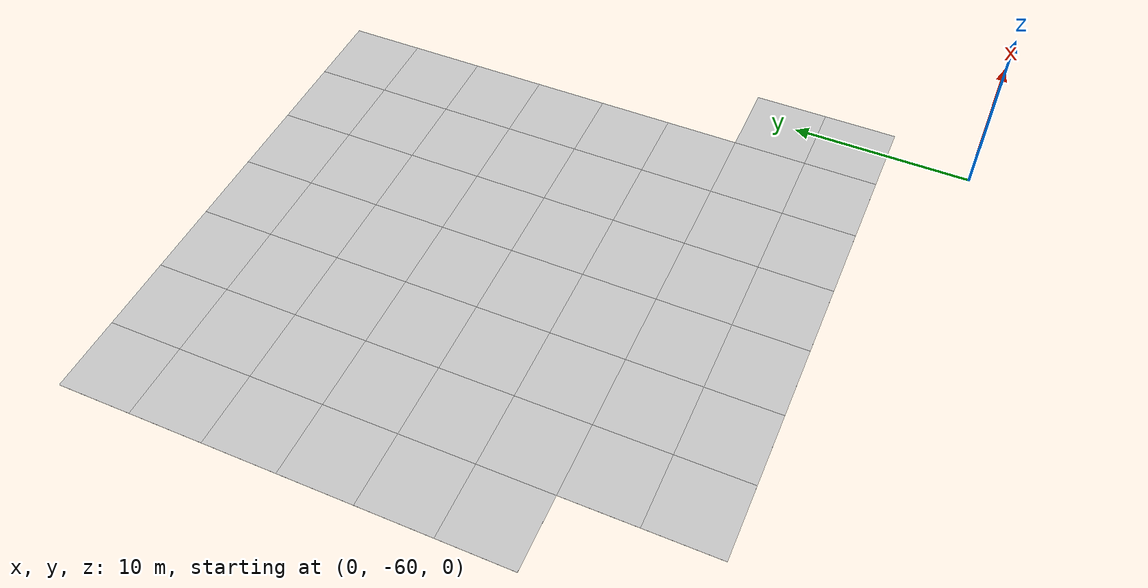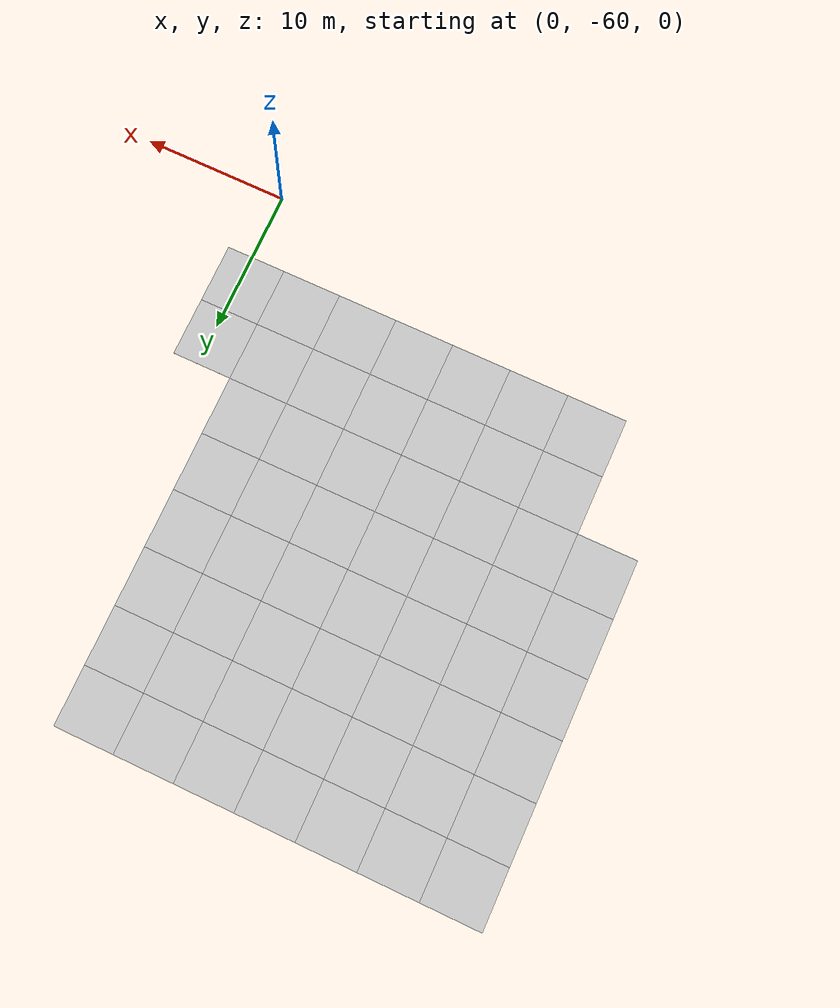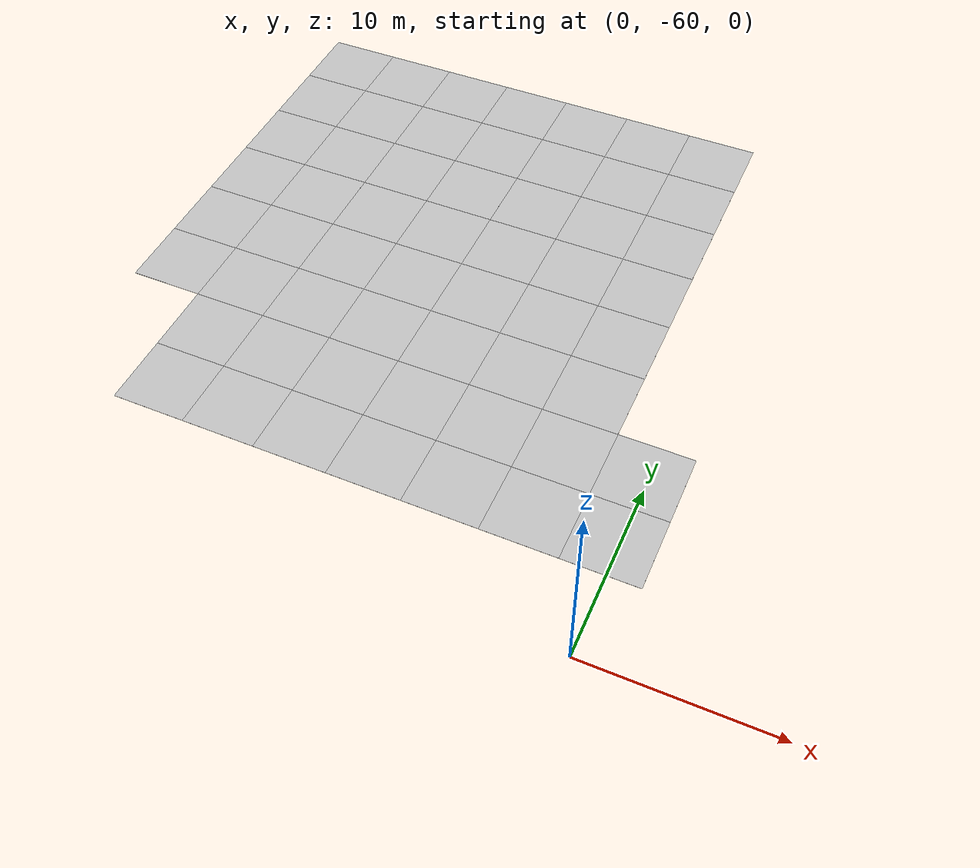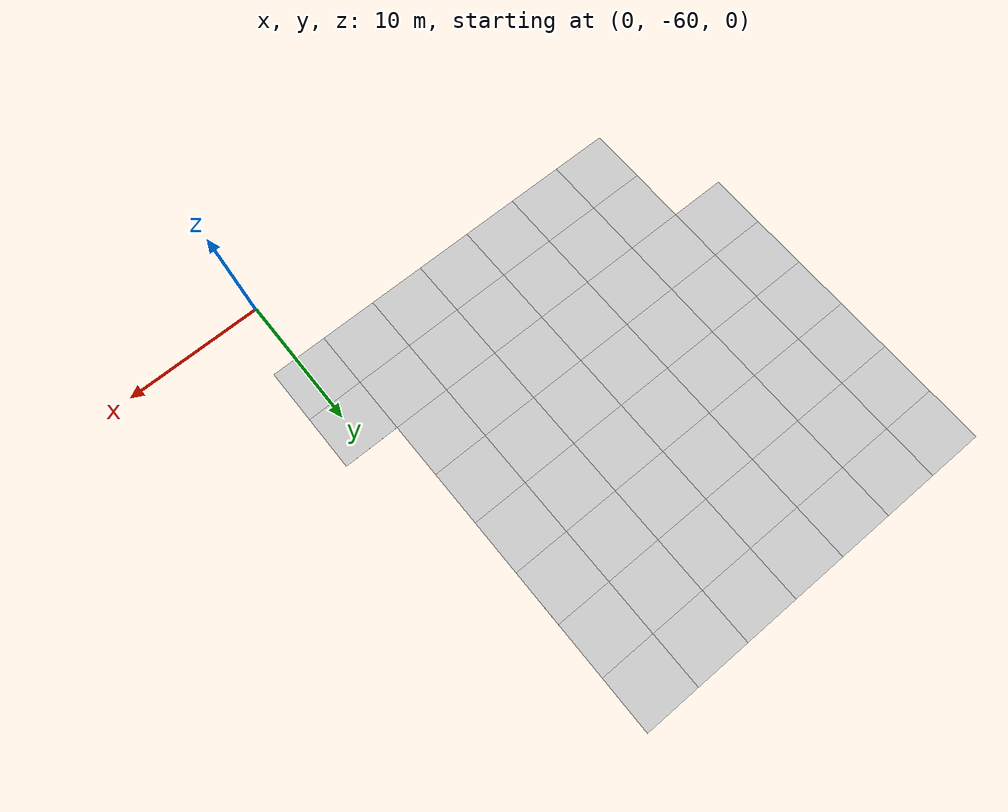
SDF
<sdf version="1.6">
 <world name="default">
  <model name="Tile/11-2">
   <static>1</static>
   <link name="link">
    <collision name="collision">
     <geometry><plane><normal>0 0 1</normal><size>4.096 4.096</size></plane></geometry>
     <surface><friction><ode><mu>100</mu><mu2>50</mu2></ode></friction></surface>
    </collision>
    <visual name="visual">
     <cast_shadows>0</cast_shadows>
     <geometry><plane><normal>0 0 1</normal><size>4.096 4.096</size></plane></geometry>
     <material>
      <script>
       <uri>file://materials/scripts</uri>
       <uri>file://materials/textures</uri>
       <name>Tile/e4f0c8edd0679bbf7d30cf2176a0b563ccfb72f2281cc6c7a8d43a3aa1fa3251</name>
      </script>
     </material>
    </visual>
   </link>
   <pose>-28.969873005767766 -45.104103275294236 0 0 -0 0</pose>
  </model>
  <model name="Tile/11-3">
   <static>1</static>
   <link name="link">
    <collision name="collision">
     <geometry><plane><normal>0 0 1</normal><size>4.096 4.096</size></plane></geometry>
     <surface><friction><ode><mu>100</mu><mu2>50</mu2></ode></friction></surface>
    </collision>
    <visual name="visual">
     <cast_shadows>0</cast_shadows>
     <geometry><plane><normal>0 0 1</normal><size>4.096 4.096</size></plane></geometry>
     <material>
      <script>
       <uri>file://materials/scripts</uri>
       <uri>file://materials/textures</uri>
       <name>Tile/c479ea7282fa4ebb76352e3bc3d0dce1fe5342bc051667836b433afbb9d802bd</name>
      </script>
     </material>
    </visual>
   </link>
   <pose>-28.969873005767766 -41.00810327529424 0 0 -0 0</pose>
  </model>
  <model name="Tile/11-4">
   <static>1</static>
   <link name="link">
    <collision name="collision">
     <geometry><plane><normal>0 0 1</normal><size>4.096 4.096</size></plane></geometry>
     <surface><friction><ode><mu>100</mu><mu2>50</mu2></ode></friction></surface>
    </collision>
    <visual name="visual">
     <cast_shadows>0</cast_shadows>
     <geometry><plane><normal>0 0 1</normal><size>4.096 4.096</size></plane></geometry>
     <material>
      <script>
       <uri>file://materials/scripts</uri>
       <uri>file://materials/textures</uri>
       <name>Tile/5eab350b8220ac9944dbdfa4ac3288c7c17e24c3bf5df0dfcf6173d64dae00a1</name>
      </script>
     </material>
    </visual>
   </link>
   <pose>-28.969873005767766 -36.91210327529424 0 0 -0 0</pose>
  </model>
  <model name="Tile/11-5">
   <static>1</static>
   <link name="link">
    <collision name="collision">
     <geometry><plane><normal>0 0 1</normal><size>4.096 4.096</size></plane></geometry>
     <surface><friction><ode><mu>100</mu><mu2>50</mu2></ode></friction></surface>
    </collision>
    <visual name="visual">
     <cast_shadows>0</cast_shadows>
     <geometry><plane><normal>0 0 1</normal><size>4.096 4.096</size></plane></geometry>
     <material>
      <script>
       <uri>file://materials/scripts</uri>
       <uri>file://materials/textures</uri>
       <name>Tile/5eab350b8220ac9944dbdfa4ac3288c7c17e24c3bf5df0dfcf6173d64dae00a1</name>
      </script>
     </material>
    </visual>
   </link>
   <pose>-28.969873005767766 -32.81610327529424 0 0 -0 0</pose>
  </model>
  <model name="Tile/11-6">
   <static>1</static>
   <link name="link">
    <collision name="collision">
     <geometry><plane><normal>0 0 1</normal><size>4.096 4.096</size></plane></geometry>
     <surface><friction><ode><mu>100</mu><mu2>50</mu2></ode></friction></surface>
    </collision>
    <visual name="visual">
     <cast_shadows>0</cast_shadows>
     <geometry><plane><normal>0 0 1</normal><size>4.096 4.096</size></plane></geometry>
     <material>
      <script>
       <uri>file://materials/scripts</uri>
       <uri>file://materials/textures</uri>
       <name>Tile/5eab350b8220ac9944dbdfa4ac3288c7c17e24c3bf5df0dfcf6173d64dae00a1</name>
      </script>
     </material>
    </visual>
   </link>
   <pose>-28.969873005767766 -28.72010327529424 0 0 -0 0</pose>
  </model>
  <model name="Tile/11-7">
   <static>1</static>
   <link name="link">
    <collision name="collision">
     <geometry><plane><normal>0 0 1</normal><size>4.096 4.096</size></plane></geometry>
     <surface><friction><ode><mu>100</mu><mu2>50</mu2></ode></friction></surface>
    </collision>
    <visual name="visual">
     <cast_shadows>0</cast_shadows>
     <geometry><plane><normal>0 0 1</normal><size>4.096 4.096</size></plane></geometry>
     <material>
      <script>
       <uri>file://materials/scripts</uri>
       <uri>file://materials/textures</uri>
       <name>Tile/5eab350b8220ac9944dbdfa4ac3288c7c17e24c3bf5df0dfcf6173d64dae00a1</name>
      </script>
     </material>
    </visual>
   </link>
   <pose>-28.969873005767766 -24.62410327529424 0 0 -0 0</pose>
  </model>
  <model name="Tile/12-0">
   <static>1</static>
   <link name="link">
    <collision name="collision">
     <geometry><plane><normal>0 0 1</normal><size>4.096 4.096</size></plane></geometry>
     <surface><friction><ode><mu>100</mu><mu2>50</mu2></ode></friction></surface>
    </collision>
    <visual name="visual">
     <cast_shadows>0</cast_shadows>
     <geometry><plane><normal>0 0 1</normal><size>4.096 4.096</size></plane></geometry>
     <material>
      <script>
       <uri>file://materials/scripts</uri>
       <uri>file://materials/textures</uri>
       <name>Tile/5eab350b8220ac9944dbdfa4ac3288c7c17e24c3bf5df0dfcf6173d64dae00a1</name>
      </script>
     </material>
    </visual>
   </link>
   <pose>-24.873873005767763 -53.296103275294236 0 0 -0 0</pose>
  </model>
  <model name="Tile/12-1">
   <static>1</static>
   <link name="link">
    <collision name="collision">
     <geometry><plane><normal>0 0 1</normal><size>4.096 4.096</size></plane></geometry>
     <surface><friction><ode><mu>100</mu><mu2>50</mu2></ode></friction></surface>
    </collision>
    <visual name="visual">
     <cast_shadows>0</cast_shadows>
     <geometry><plane><normal>0 0 1</normal><size>4.096 4.096</size></plane></geometry>
     <material>
      <script>
       <uri>file://materials/scripts</uri>
       <uri>file://materials/textures</uri>
       <name>Tile/5eab350b8220ac9944dbdfa4ac3288c7c17e24c3bf5df0dfcf6173d64dae00a1</name>
      </script>
     </material>
    </visual>
   </link>
   <pose>-24.873873005767763 -49.20010327529424 0 0 -0 0</pose>
  </model>
  <model name="Tile/12-2">
   <static>1</static>
   <link name="link">
    <collision name="collision">
     <geometry><plane><normal>0 0 1</normal><size>4.096 4.096</size></plane></geometry>
     <surface><friction><ode><mu>100</mu><mu2>50</mu2></ode></friction></surface>
    </collision>
    <visual name="visual">
     <cast_shadows>0</cast_shadows>
     <geometry><plane><normal>0 0 1</normal><size>4.096 4.096</size></plane></geometry>
     <material>
      <script>
       <uri>file://materials/scripts</uri>
       <uri>file://materials/textures</uri>
       <name>Tile/5eab350b8220ac9944dbdfa4ac3288c7c17e24c3bf5df0dfcf6173d64dae00a1</name>
      </script>
     </material>
    </visual>
   </link>
   <pose>-24.873873005767763 -45.104103275294236 0 0 -0 0</pose>
  </model>
  <model name="Tile/12-3">
   <static>1</static>
   <link name="link">
    <collision name="collision">
     <geometry><plane><normal>0 0 1</normal><size>4.096 4.096</size></plane></geometry>
     <surface><friction><ode><mu>100</mu><mu2>50</mu2></ode></friction></surface>
    </collision>
    <visual name="visual">
     <cast_shadows>0</cast_shadows>
     <geometry><plane><normal>0 0 1</normal><size>4.096 4.096</size></plane></geometry>
     <material>
      <script>
       <uri>file://materials/scripts</uri>
       <uri>file://materials/textures</uri>
       <name>Tile/64b83ad4eba6cb653b7557e74b4c96131fe190edd249d452c4bf5cab71d97735</name>
      </script>
     </material>
    </visual>
   </link>
   <pose>-24.873873005767763 -41.00810327529424 0 0 -0 0</pose>
  </model>
  <model name="Tile/12-4">
   <static>1</static>
   <link name="link">
    <collision name="collision">
     <geometry><plane><normal>0 0 1</normal><size>4.096 4.096</size></plane></geometry>
     <surface><friction><ode><mu>100</mu><mu2>50</mu2></ode></friction></surface>
    </collision>
    <visual name="visual">
     <cast_shadows>0</cast_shadows>
     <geometry><plane><normal>0 0 1</normal><size>4.096 4.096</size></plane></geometry>
     <material>
      <script>
       <uri>file://materials/scripts</uri>
       <uri>file://materials/textures</uri>
       <name>Tile/5eab350b8220ac9944dbdfa4ac3288c7c17e24c3bf5df0dfcf6173d64dae00a1</name>
      </script>
     </material>
    </visual>
   </link>
   <pose>-24.873873005767763 -36.91210327529424 0 0 -0 0</pose>
  </model>
  <model name="Tile/12-5">
   <static>1</static>
   <link name="link">
    <collision name="collision">
     <geometry><plane><normal>0 0 1</normal><size>4.096 4.096</size></plane></geometry>
     <surface><friction><ode><mu>100</mu><mu2>50</mu2></ode></friction></surface>
    </collision>
    <visual name="visual">
     <cast_shadows>0</cast_shadows>
     <geometry><plane><normal>0 0 1</normal><size>4.096 4.096</size></plane></geometry>
     <material>
      <script>
       <uri>file://materials/scripts</uri>
       <uri>file://materials/textures</uri>
       <name>Tile/5eab350b8220ac9944dbdfa4ac3288c7c17e24c3bf5df0dfcf6173d64dae00a1</name>
      </script>
     </material>
    </visual>
   </link>
   <pose>-24.873873005767763 -32.81610327529424 0 0 -0 0</pose>
  </model>
  <model name="Tile/12-6">
   <static>1</static>
   <link name="link">
    <collision name="collision">
     <geometry><plane><normal>0 0 1</normal><size>4.096 4.096</size></plane></geometry>
     <surface><friction><ode><mu>100</mu><mu2>50</mu2></ode></friction></surface>
    </collision>
    <visual name="visual">
     <cast_shadows>0</cast_shadows>
     <geometry><plane><normal>0 0 1</normal><size>4.096 4.096</size></plane></geometry>
     <material>
      <script>
       <uri>file://materials/scripts</uri>
       <uri>file://materials/textures</uri>
       <name>Tile/5eab350b8220ac9944dbdfa4ac3288c7c17e24c3bf5df0dfcf6173d64dae00a1</name>
      </script>
     </material>
    </visual>
   </link>
   <pose>-24.873873005767763 -28.72010327529424 0 0 -0 0</pose>
  </model>
  <model name="Tile/12-7">
   <static>1</static>
   <link name="link">
    <collision name="collision">
     <geometry><plane><normal>0 0 1</normal><size>4.096 4.096</size></plane></geometry>
     <surface><friction><ode><mu>100</mu><mu2>50</mu2></ode></friction></surface>
    </collision>
    <visual name="visual">
     <cast_shadows>0</cast_shadows>
     <geometry><plane><normal>0 0 1</normal><size>4.096 4.096</size></plane></geometry>
     <material>
      <script>
       <uri>file://materials/scripts</uri>
       <uri>file://materials/textures</uri>
       <name>Tile/5eab350b8220ac9944dbdfa4ac3288c7c17e24c3bf5df0dfcf6173d64dae00a1</name>
      </script>
     </material>
    </visual>
   </link>
   <pose>-24.873873005767763 -24.62410327529424 0 0 -0 0</pose>
  </model>
  <model name="Tile/13-0">
   <static>1</static>
   <link name="link">
    <collision name="collision">
     <geometry><plane><normal>0 0 1</normal><size>4.096 4.096</size></plane></geometry>
     <surface><friction><ode><mu>100</mu><mu2>50</mu2></ode></friction></surface>
    </collision>
    <visual name="visual">
     <cast_shadows>0</cast_shadows>
     <geometry><plane><normal>0 0 1</normal><size>4.096 4.096</size></plane></geometry>
     <material>
      <script>
       <uri>file://materials/scripts</uri>
       <uri>file://materials/textures</uri>
       <name>Tile/5eab350b8220ac9944dbdfa4ac3288c7c17e24c3bf5df0dfcf6173d64dae00a1</name>
      </script>
     </material>
    </visual>
   </link>
   <pose>-20.777873005767766 -53.296103275294236 0 0 -0 0</pose>
  </model>
  <model name="Tile/13-1">
   <static>1</static>
   <link name="link">
    <collision name="collision">
     <geometry><plane><normal>0 0 1</normal><size>4.096 4.096</size></plane></geometry>
     <surface><friction><ode><mu>100</mu><mu2>50</mu2></ode></friction></surface>
    </collision>
    <visual name="visual">
     <cast_shadows>0</cast_shadows>
     <geometry><plane><normal>0 0 1</normal><size>4.096 4.096</size></plane></geometry>
     <material>
      <script>
       <uri>file://materials/scripts</uri>
       <uri>file://materials/textures</uri>
       <name>Tile/5eab350b8220ac9944dbdfa4ac3288c7c17e24c3bf5df0dfcf6173d64dae00a1</name>
      </script>
     </material>
    </visual>
   </link>
   <pose>-20.777873005767766 -49.20010327529424 0 0 -0 0</pose>
  </model>
  <model name="Tile/13-2">
   <static>1</static>
   <link name="link">
    <collision name="collision">
     <geometry><plane><normal>0 0 1</normal><size>4.096 4.096</size></plane></geometry>
     <surface><friction><ode><mu>100</mu><mu2>50</mu2></ode></friction></surface>
    </collision>
    <visual name="visual">
     <cast_shadows>0</cast_shadows>
     <geometry><plane><normal>0 0 1</normal><size>4.096 4.096</size></plane></geometry>
     <material>
      <script>
       <uri>file://materials/scripts</uri>
       <uri>file://materials/textures</uri>
       <name>Tile/5eab350b8220ac9944dbdfa4ac3288c7c17e24c3bf5df0dfcf6173d64dae00a1</name>
      </script>
     </material>
    </visual>
   </link>
   <pose>-20.777873005767766 -45.104103275294236 0 0 -0 0</pose>
  </model>
  <model name="Tile/13-3">
   <static>1</static>
   <link name="link">
    <collision name="collision">
     <geometry><plane><normal>0 0 1</normal><size>4.096 4.096</size></plane></geometry>
     <surface><friction><ode><mu>100</mu><mu2>50</mu2></ode></friction></surface>
    </collision>
    <visual name="visual">
     <cast_shadows>0</cast_shadows>
     <geometry><plane><normal>0 0 1</normal><size>4.096 4.096</size></plane></geometry>
     <material>
      <script>
       <uri>file://materials/scripts</uri>
       <uri>file://materials/textures</uri>
       <name>Tile/a4f88de43d3d6e0bd1d957b4a12135152e91ee0ced67b1a0b945aad336f016a4</name>
      </script>
     </material>
    </visual>
   </link>
   <pose>-20.777873005767766 -41.00810327529424 0 0 -0 0</pose>
  </model>
  <model name="Tile/13-4">
   <static>1</static>
   <link name="link">
    <collision name="collision">
     <geometry><plane><normal>0 0 1</normal><size>4.096 4.096</size></plane></geometry>
     <surface><friction><ode><mu>100</mu><mu2>50</mu2></ode></friction></surface>
    </collision>
    <visual name="visual">
     <cast_shadows>0</cast_shadows>
     <geometry><plane><normal>0 0 1</normal><size>4.096 4.096</size></plane></geometry>
     <material>
      <script>
       <uri>file://materials/scripts</uri>
       <uri>file://materials/textures</uri>
       <name>Tile/9358590a183e644f9c6049dfbfd8828ea33b1f3a09569dcf36001e056eb0a59b</name>
      </script>
     </material>
    </visual>
   </link>
   <pose>-20.777873005767766 -36.91210327529424 0 0 -0 0</pose>
  </model>
  <model name="Tile/13-5">
   <static>1</static>
   <link name="link">
    <collision name="collision">
     <geometry><plane><normal>0 0 1</normal><size>4.096 4.096</size></plane></geometry>
     <surface><friction><ode><mu>100</mu><mu2>50</mu2></ode></friction></surface>
    </collision>
    <visual name="visual">
     <cast_shadows>0</cast_shadows>
     <geometry><plane><normal>0 0 1</normal><size>4.096 4.096</size></plane></geometry>
     <material>
      <script>
       <uri>file://materials/scripts</uri>
       <uri>file://materials/textures</uri>
       <name>Tile/5eab350b8220ac9944dbdfa4ac3288c7c17e24c3bf5df0dfcf6173d64dae00a1</name>
      </script>
     </material>
    </visual>
   </link>
   <pose>-20.777873005767766 -32.81610327529424 0 0 -0 0</pose>
  </model>
  <model name="Tile/13-6">
   <static>1</static>
   <link name="link">
    <collision name="collision">
     <geometry><plane><normal>0 0 1</normal><size>4.096 4.096</size></plane></geometry>
     <surface><friction><ode><mu>100</mu><mu2>50</mu2></ode></friction></surface>
    </collision>
    <visual name="visual">
     <cast_shadows>0</cast_shadows>
     <geometry><plane><normal>0 0 1</normal><size>4.096 4.096</size></plane></geometry>
     <material>
      <script>
       <uri>file://materials/scripts</uri>
       <uri>file://materials/textures</uri>
       <name>Tile/5eab350b8220ac9944dbdfa4ac3288c7c17e24c3bf5df0dfcf6173d64dae00a1</name>
      </script>
     </material>
    </visual>
   </link>
   <pose>-20.777873005767766 -28.72010327529424 0 0 -0 0</pose>
  </model>
  <model name="Tile/13-7">
   <static>1</static>
   <link name="link">
    <collision name="collision">
     <geometry><plane><normal>0 0 1</normal><size>4.096 4.096</size></plane></geometry>
     <surface><friction><ode><mu>100</mu><mu2>50</mu2></ode></friction></surface>
    </collision>
    <visual name="visual">
     <cast_shadows>0</cast_shadows>
     <geometry><plane><normal>0 0 1</normal><size>4.096 4.096</size></plane></geometry>
     <material>
      <script>
       <uri>file://materials/scripts</uri>
       <uri>file://materials/textures</uri>
       <name>Tile/5eab350b8220ac9944dbdfa4ac3288c7c17e24c3bf5df0dfcf6173d64dae00a1</name>
      </script>
     </material>
    </visual>
   </link>
   <pose>-20.777873005767766 -24.62410327529424 0 0 -0 0</pose>
  </model>
  <model name="Tile/14-0">
   <static>1</static>
   <link name="link">
    <collision name="collision">
     <geometry><plane><normal>0 0 1</normal><size>4.096 4.096</size></plane></geometry>
     <surface><friction><ode><mu>100</mu><mu2>50</mu2></ode></friction></surface>
    </collision>
    <visual name="visual">
     <cast_shadows>0</cast_shadows>
     <geometry><plane><normal>0 0 1</normal><size>4.096 4.096</size></plane></geometry>
     <material>
      <script>
       <uri>file://materials/scripts</uri>
       <uri>file://materials/textures</uri>
       <name>Tile/5eab350b8220ac9944dbdfa4ac3288c7c17e24c3bf5df0dfcf6173d64dae00a1</name>
      </script>
     </material>
    </visual>
   </link>
   <pose>-16.681873005767763 -53.296103275294236 0 0 -0 0</pose>
  </model>
  <model name="Tile/14-1">
   <static>1</static>
   <link name="link">
    <collision name="collision">
     <geometry><plane><normal>0 0 1</normal><size>4.096 4.096</size></plane></geometry>
     <surface><friction><ode><mu>100</mu><mu2>50</mu2></ode></friction></surface>
    </collision>
    <visual name="visual">
     <cast_shadows>0</cast_shadows>
     <geometry><plane><normal>0 0 1</normal><size>4.096 4.096</size></plane></geometry>
     <material>
      <script>
       <uri>file://materials/scripts</uri>
       <uri>file://materials/textures</uri>
       <name>Tile/5eab350b8220ac9944dbdfa4ac3288c7c17e24c3bf5df0dfcf6173d64dae00a1</name>
      </script>
     </material>
    </visual>
   </link>
   <pose>-16.681873005767763 -49.20010327529424 0 0 -0 0</pose>
  </model>
  <model name="Tile/14-2">
   <static>1</static>
   <link name="link">
    <collision name="collision">
     <geometry><plane><normal>0 0 1</normal><size>4.096 4.096</size></plane></geometry>
     <surface><friction><ode><mu>100</mu><mu2>50</mu2></ode></friction></surface>
    </collision>
    <visual name="visual">
     <cast_shadows>0</cast_shadows>
     <geometry><plane><normal>0 0 1</normal><size>4.096 4.096</size></plane></geometry>
     <material>
      <script>
       <uri>file://materials/scripts</uri>
       <uri>file://materials/textures</uri>
       <name>Tile/5eab350b8220ac9944dbdfa4ac3288c7c17e24c3bf5df0dfcf6173d64dae00a1</name>
      </script>
     </material>
    </visual>
   </link>
   <pose>-16.681873005767763 -45.104103275294236 0 0 -0 0</pose>
  </model>
  <model name="Tile/14-3">
   <static>1</static>
   <link name="link">
    <collision name="collision">
     <geometry><plane><normal>0 0 1</normal><size>4.096 4.096</size></plane></geometry>
     <surface><friction><ode><mu>100</mu><mu2>50</mu2></ode></friction></surface>
    </collision>
    <visual name="visual">
     <cast_shadows>0</cast_shadows>
     <geometry><plane><normal>0 0 1</normal><size>4.096 4.096</size></plane></geometry>
     <material>
      <script>
       <uri>file://materials/scripts</uri>
       <uri>file://materials/textures</uri>
       <name>Tile/c28259a6397635ff0918fdcdacf67cd623eb404393fb616636146822791ff4e6</name>
      </script>
     </material>
    </visual>
   </link>
   <pose>-16.681873005767763 -41.00810327529424 0 0 -0 0</pose>
  </model>
  <model name="Tile/14-4">
   <static>1</static>
   <link name="link">
    <collision name="collision">
     <geometry><plane><normal>0 0 1</normal><size>4.096 4.096</size></plane></geometry>
     <surface><friction><ode><mu>100</mu><mu2>50</mu2></ode></friction></surface>
    </collision>
    <visual name="visual">
     <cast_shadows>0</cast_shadows>
     <geometry><plane><normal>0 0 1</normal><size>4.096 4.096</size></plane></geometry>
     <material>
      <script>
       <uri>file://materials/scripts</uri>
       <uri>file://materials/textures</uri>
       <name>Tile/ae9521858ff1930b107badcede4153d62ba9a1880a785c18564fc0a0d1b5d340</name>
      </script>
     </material>
    </visual>
   </link>
   <pose>-16.681873005767763 -36.91210327529424 0 0 -0 0</pose>
  </model>
  <model name="Tile/14-5">
   <static>1</static>
   <link name="link">
    <collision name="collision">
     <geometry><plane><normal>0 0 1</normal><size>4.096 4.096</size></plane></geometry>
     <surface><friction><ode><mu>100</mu><mu2>50</mu2></ode></friction></surface>
    </collision>
    <visual name="visual">
     <cast_shadows>0</cast_shadows>
     <geometry><plane><normal>0 0 1</normal><size>4.096 4.096</size></plane></geometry>
     <material>
      <script>
       <uri>file://materials/scripts</uri>
       <uri>file://materials/textures</uri>
       <name>Tile/5eab350b8220ac9944dbdfa4ac3288c7c17e24c3bf5df0dfcf6173d64dae00a1</name>
      </script>
     </material>
    </visual>
   </link>
   <pose>-16.681873005767763 -32.81610327529424 0 0 -0 0</pose>
  </model>
  <model name="Tile/14-6">
   <static>1</static>
   <link name="link">
    <collision name="collision">
     <geometry><plane><normal>0 0 1</normal><size>4.096 4.096</size></plane></geometry>
     <surface><friction><ode><mu>100</mu><mu2>50</mu2></ode></friction></surface>
    </collision>
    <visual name="visual">
     <cast_shadows>0</cast_shadows>
     <geometry><plane><normal>0 0 1</normal><size>4.096 4.096</size></plane></geometry>
     <material>
      <script>
       <uri>file://materials/scripts</uri>
       <uri>file://materials/textures</uri>
       <name>Tile/5eab350b8220ac9944dbdfa4ac3288c7c17e24c3bf5df0dfcf6173d64dae00a1</name>
      </script>
     </material>
    </visual>
   </link>
   <pose>-16.681873005767763 -28.72010327529424 0 0 -0 0</pose>
  </model>
  <model name="Tile/14-7">
   <static>1</static>
   <link name="link">
    <collision name="collision">
     <geometry><plane><normal>0 0 1</normal><size>4.096 4.096</size></plane></geometry>
     <surface><friction><ode><mu>100</mu><mu2>50</mu2></ode></friction></surface>
    </collision>
    <visual name="visual">
     <cast_shadows>0</cast_shadows>
     <geometry><plane><normal>0 0 1</normal><size>4.096 4.096</size></plane></geometry>
     <material>
      <script>
       <uri>file://materials/scripts</uri>
       <uri>file://materials/textures</uri>
       <name>Tile/5eab350b8220ac9944dbdfa4ac3288c7c17e24c3bf5df0dfcf6173d64dae00a1</name>
      </script>
     </material>
    </visual>
   </link>
   <pose>-16.681873005767763 -24.62410327529424 0 0 -0 0</pose>
  </model>
  <model name="Tile/15-0">
   <static>1</static>
   <link name="link">
    <collision name="collision">
     <geometry><plane><normal>0 0 1</normal><size>4.096 4.096</size></plane></geometry>
     <surface><friction><ode><mu>100</mu><mu2>50</mu2></ode></friction></surface>
    </collision>
    <visual name="visual">
     <cast_shadows>0</cast_shadows>
     <geometry><plane><normal>0 0 1</normal><size>4.096 4.096</size></plane></geometry>
     <material>
      <script>
       <uri>file://materials/scripts</uri>
       <uri>file://materials/textures</uri>
       <name>Tile/5eab350b8220ac9944dbdfa4ac3288c7c17e24c3bf5df0dfcf6173d64dae00a1</name>
      </script>
     </material>
    </visual>
   </link>
   <pose>-12.585873005767766 -53.296103275294236 0 0 -0 0</pose>
  </model>
  <model name="Tile/15-1">
   <static>1</static>
   <link name="link">
    <collision name="collision">
     <geometry><plane><normal>0 0 1</normal><size>4.096 4.096</size></plane></geometry>
     <surface><friction><ode><mu>100</mu><mu2>50</mu2></ode></friction></surface>
    </collision>
    <visual name="visual">
     <cast_shadows>0</cast_shadows>
     <geometry><plane><normal>0 0 1</normal><size>4.096 4.096</size></plane></geometry>
     <material>
      <script>
       <uri>file://materials/scripts</uri>
       <uri>file://materials/textures</uri>
       <name>Tile/5eab350b8220ac9944dbdfa4ac3288c7c17e24c3bf5df0dfcf6173d64dae00a1</name>
      </script>
     </material>
    </visual>
   </link>
   <pose>-12.585873005767766 -49.20010327529424 0 0 -0 0</pose>
  </model>
  <model name="Tile/15-2">
   <static>1</static>
   <link name="link">
    <collision name="collision">
     <geometry><plane><normal>0 0 1</normal><size>4.096 4.096</size></plane></geometry>
     <surface><friction><ode><mu>100</mu><mu2>50</mu2></ode></friction></surface>
    </collision>
    <visual name="visual">
     <cast_shadows>0</cast_shadows>
     <geometry><plane><normal>0 0 1</normal><size>4.096 4.096</size></plane></geometry>
     <material>
      <script>
       <uri>file://materials/scripts</uri>
       <uri>file://materials/textures</uri>
       <name>Tile/5eab350b8220ac9944dbdfa4ac3288c7c17e24c3bf5df0dfcf6173d64dae00a1</name>
      </script>
     </material>
    </visual>
   </link>
   <pose>-12.585873005767766 -45.104103275294236 0 0 -0 0</pose>
  </model>
  <model name="Tile/15-3">
   <static>1</static>
   <link name="link">
    <collision name="collision">
     <geometry><plane><normal>0 0 1</normal><size>4.096 4.096</size></plane></geometry>
     <surface><friction><ode><mu>100</mu><mu2>50</mu2></ode></friction></surface>
    </collision>
    <visual name="visual">
     <cast_shadows>0</cast_shadows>
     <geometry><plane><normal>0 0 1</normal><size>4.096 4.096</size></plane></geometry>
     <material>
      <script>
       <uri>file://materials/scripts</uri>
       <uri>file://materials/textures</uri>
       <name>Tile/5eab350b8220ac9944dbdfa4ac3288c7c17e24c3bf5df0dfcf6173d64dae00a1</name>
      </script>
     </material>
    </visual>
   </link>
   <pose>-12.585873005767766 -41.00810327529424 0 0 -0 0</pose>
  </model>
  <model name="Tile/15-4">
   <static>1</static>
   <link name="link">
    <collision name="collision">
     <geometry><plane><normal>0 0 1</normal><size>4.096 4.096</size></plane></geometry>
     <surface><friction><ode><mu>100</mu><mu2>50</mu2></ode></friction></surface>
    </collision>
    <visual name="visual">
     <cast_shadows>0</cast_shadows>
     <geometry><plane><normal>0 0 1</normal><size>4.096 4.096</size></plane></geometry>
     <material>
      <script>
       <uri>file://materials/scripts</uri>
       <uri>file://materials/textures</uri>
       <name>Tile/9d0e914d7e436d001f797bb160eab153590de4413be98a07891fcea07e9897e2</name>
      </script>
     </material>
    </visual>
   </link>
   <pose>-12.585873005767766 -36.91210327529424 0 0 -0 0</pose>
  </model>
  <model name="Tile/15-5">
   <static>1</static>
   <link name="link">
    <collision name="collision">
     <geometry><plane><normal>0 0 1</normal><size>4.096 4.096</size></plane></geometry>
     <surface><friction><ode><mu>100</mu><mu2>50</mu2></ode></friction></surface>
    </collision>
    <visual name="visual">
     <cast_shadows>0</cast_shadows>
     <geometry><plane><normal>0 0 1</normal><size>4.096 4.096</size></plane></geometry>
     <material>
      <script>
       <uri>file://materials/scripts</uri>
       <uri>file://materials/textures</uri>
       <name>Tile/5eab350b8220ac9944dbdfa4ac3288c7c17e24c3bf5df0dfcf6173d64dae00a1</name>
      </script>
     </material>
    </visual>
   </link>
   <pose>-12.585873005767766 -32.81610327529424 0 0 -0 0</pose>
  </model>
  <model name="Tile/15-6">
   <static>1</static>
   <link name="link">
    <collision name="collision">
     <geometry><plane><normal>0 0 1</normal><size>4.096 4.096</size></plane></geometry>
     <surface><friction><ode><mu>100</mu><mu2>50</mu2></ode></friction></surface>
    </collision>
    <visual name="visual">
     <cast_shadows>0</cast_shadows>
     <geometry><plane><normal>0 0 1</normal><size>4.096 4.096</size></plane></geometry>
     <material>
      <script>
       <uri>file://materials/scripts</uri>
       <uri>file://materials/textures</uri>
       <name>Tile/5eab350b8220ac9944dbdfa4ac3288c7c17e24c3bf5df0dfcf6173d64dae00a1</name>
      </script>
     </material>
    </visual>
   </link>
   <pose>-12.585873005767766 -28.72010327529424 0 0 -0 0</pose>
  </model>
  <model name="Tile/15-7">
   <static>1</static>
   <link name="link">
    <collision name="collision">
     <geometry><plane><normal>0 0 1</normal><size>4.096 4.096</size></plane></geometry>
     <surface><friction><ode><mu>100</mu><mu2>50</mu2></ode></friction></surface>
    </collision>
    <visual name="visual">
     <cast_shadows>0</cast_shadows>
     <geometry><plane><normal>0 0 1</normal><size>4.096 4.096</size></plane></geometry>
     <material>
      <script>
       <uri>file://materials/scripts</uri>
       <uri>file://materials/textures</uri>
       <name>Tile/5eab350b8220ac9944dbdfa4ac3288c7c17e24c3bf5df0dfcf6173d64dae00a1</name>
      </script>
     </material>
    </visual>
   </link>
   <pose>-12.585873005767766 -24.62410327529424 0 0 -0 0</pose>
  </model>
  <model name="Tile/16-0">
   <static>1</static>
   <link name="link">
    <collision name="collision">
     <geometry><plane><normal>0 0 1</normal><size>4.096 4.096</size></plane></geometry>
     <surface><friction><ode><mu>100</mu><mu2>50</mu2></ode></friction></surface>
    </collision>
    <visual name="visual">
     <cast_shadows>0</cast_shadows>
     <geometry><plane><normal>0 0 1</normal><size>4.096 4.096</size></plane></geometry>
     <material>
      <script>
       <uri>file://materials/scripts</uri>
       <uri>file://materials/textures</uri>
       <name>Tile/5eab350b8220ac9944dbdfa4ac3288c7c17e24c3bf5df0dfcf6173d64dae00a1</name>
      </script>
     </material>
    </visual>
   </link>
   <pose>-8.489873005767762 -53.296103275294236 0 0 -0 0</pose>
  </model>
  <model name="Tile/16-1">
   <static>1</static>
   <link name="link">
    <collision name="collision">
     <geometry><plane><normal>0 0 1</normal><size>4.096 4.096</size></plane></geometry>
     <surface><friction><ode><mu>100</mu><mu2>50</mu2></ode></friction></surface>
    </collision>
    <visual name="visual">
     <cast_shadows>0</cast_shadows>
     <geometry><plane><normal>0 0 1</normal><size>4.096 4.096</size></plane></geometry>
     <material>
      <script>
       <uri>file://materials/scripts</uri>
       <uri>file://materials/textures</uri>
       <name>Tile/5eab350b8220ac9944dbdfa4ac3288c7c17e24c3bf5df0dfcf6173d64dae00a1</name>
      </script>
     </material>
    </visual>
   </link>
   <pose>-8.489873005767762 -49.20010327529424 0 0 -0 0</pose>
  </model>
  <model name="Tile/16-2">
   <static>1</static>
   <link name="link">
    <collision name="collision">
     <geometry><plane><normal>0 0 1</normal><size>4.096 4.096</size></plane></geometry>
     <surface><friction><ode><mu>100</mu><mu2>50</mu2></ode></friction></surface>
    </collision>
    <visual name="visual">
     <cast_shadows>0</cast_shadows>
     <geometry><plane><normal>0 0 1</normal><size>4.096 4.096</size></plane></geometry>
     <material>
      <script>
       <uri>file://materials/scripts</uri>
       <uri>file://materials/textures</uri>
       <name>Tile/5eab350b8220ac9944dbdfa4ac3288c7c17e24c3bf5df0dfcf6173d64dae00a1</name>
      </script>
     </material>
    </visual>
   </link>
   <pose>-8.489873005767762 -45.104103275294236 0 0 -0 0</pose>
  </model>
  <model name="Tile/16-3">
   <static>1</static>
   <link name="link">
    <collision name="collision">
     <geometry><plane><normal>0 0 1</normal><size>4.096 4.096</size></plane></geometry>
     <surface><friction><ode><mu>100</mu><mu2>50</mu2></ode></friction></surface>
    </collision>
    <visual name="visual">
     <cast_shadows>0</cast_shadows>
     <geometry><plane><normal>0 0 1</normal><size>4.096 4.096</size></plane></geometry>
     <material>
      <script>
       <uri>file://materials/scripts</uri>
       <uri>file://materials/textures</uri>
       <name>Tile/5eab350b8220ac9944dbdfa4ac3288c7c17e24c3bf5df0dfcf6173d64dae00a1</name>
      </script>
     </material>
    </visual>
   </link>
   <pose>-8.489873005767762 -41.00810327529424 0 0 -0 0</pose>
  </model>
  <model name="Tile/16-4">
   <static>1</static>
   <link name="link">
    <collision name="collision">
     <geometry><plane><normal>0 0 1</normal><size>4.096 4.096</size></plane></geometry>
     <surface><friction><ode><mu>100</mu><mu2>50</mu2></ode></friction></surface>
    </collision>
    <visual name="visual">
     <cast_shadows>0</cast_shadows>
     <geometry><plane><normal>0 0 1</normal><size>4.096 4.096</size></plane></geometry>
     <material>
      <script>
       <uri>file://materials/scripts</uri>
       <uri>file://materials/textures</uri>
       <name>Tile/1ef3a0ad7260a0b82924490ee3e87f9a53537020318f00bd99e29c5720aba12d</name>
      </script>
     </material>
    </visual>
   </link>
   <pose>-8.489873005767762 -36.91210327529424 0 0 -0 0</pose>
  </model>
  <model name="Tile/16-5">
   <static>1</static>
   <link name="link">
    <collision name="collision">
     <geometry><plane><normal>0 0 1</normal><size>4.096 4.096</size></plane></geometry>
     <surface><friction><ode><mu>100</mu><mu2>50</mu2></ode></friction></surface>
    </collision>
    <visual name="visual">
     <cast_shadows>0</cast_shadows>
     <geometry><plane><normal>0 0 1</normal><size>4.096 4.096</size></plane></geometry>
     <material>
      <script>
       <uri>file://materials/scripts</uri>
       <uri>file://materials/textures</uri>
       <name>Tile/0b059957eec2995c4cb7623efcadc65f9c3244ce2e1e334ae1247f84ca924292</name>
      </script>
     </material>
    </visual>
   </link>
   <pose>-8.489873005767762 -32.81610327529424 0 0 -0 0</pose>
  </model>
  <model name="Tile/16-6">
   <static>1</static>
   <link name="link">
    <collision name="collision">
     <geometry><plane><normal>0 0 1</normal><size>4.096 4.096</size></plane></geometry>
     <surface><friction><ode><mu>100</mu><mu2>50</mu2></ode></friction></surface>
    </collision>
    <visual name="visual">
     <cast_shadows>0</cast_shadows>
     <geometry><plane><normal>0 0 1</normal><size>4.096 4.096</size></plane></geometry>
     <material>
      <script>
       <uri>file://materials/scripts</uri>
       <uri>file://materials/textures</uri>
       <name>Tile/5eab350b8220ac9944dbdfa4ac3288c7c17e24c3bf5df0dfcf6173d64dae00a1</name>
      </script>
     </material>
    </visual>
   </link>
   <pose>-8.489873005767762 -28.72010327529424 0 0 -0 0</pose>
  </model>
  <model name="Tile/16-7">
   <static>1</static>
   <link name="link">
    <collision name="collision">
     <geometry><plane><normal>0 0 1</normal><size>4.096 4.096</size></plane></geometry>
     <surface><friction><ode><mu>100</mu><mu2>50</mu2></ode></friction></surface>
    </collision>
    <visual name="visual">
     <cast_shadows>0</cast_shadows>
     <geometry><plane><normal>0 0 1</normal><size>4.096 4.096</size></plane></geometry>
     <material>
      <script>
       <uri>file://materials/scripts</uri>
       <uri>file://materials/textures</uri>
       <name>Tile/5eab350b8220ac9944dbdfa4ac3288c7c17e24c3bf5df0dfcf6173d64dae00a1</name>
      </script>
     </material>
    </visual>
   </link>
   <pose>-8.489873005767762 -24.62410327529424 0 0 -0 0</pose>
  </model>
  <model name="Tile/17-0">
   <static>1</static>
   <link name="link">
    <collision name="collision">
     <geometry><plane><normal>0 0 1</normal><size>4.096 4.096</size></plane></geometry>
     <surface><friction><ode><mu>100</mu><mu2>50</mu2></ode></friction></surface>
    </collision>
    <visual name="visual">
     <cast_shadows>0</cast_shadows>
     <geometry><plane><normal>0 0 1</normal><size>4.096 4.096</size></plane></geometry>
     <material>
      <script>
       <uri>file://materials/scripts</uri>
       <uri>file://materials/textures</uri>
       <name>Tile/5eab350b8220ac9944dbdfa4ac3288c7c17e24c3bf5df0dfcf6173d64dae00a1</name>
      </script>
     </material>
    </visual>
   </link>
   <pose>-4.393873005767759 -53.296103275294236 0 0 -0 0</pose>
  </model>
  <model name="Tile/17-1">
   <static>1</static>
   <link name="link">
    <collision name="collision">
     <geometry><plane><normal>0 0 1</normal><size>4.096 4.096</size></plane></geometry>
     <surface><friction><ode><mu>100</mu><mu2>50</mu2></ode></friction></surface>
    </collision>
    <visual name="visual">
     <cast_shadows>0</cast_shadows>
     <geometry><plane><normal>0 0 1</normal><size>4.096 4.096</size></plane></geometry>
     <material>
      <script>
       <uri>file://materials/scripts</uri>
       <uri>file://materials/textures</uri>
       <name>Tile/5eab350b8220ac9944dbdfa4ac3288c7c17e24c3bf5df0dfcf6173d64dae00a1</name>
      </script>
     </material>
    </visual>
   </link>
   <pose>-4.393873005767759 -49.20010327529424 0 0 -0 0</pose>
  </model>
  <model name="Tile/17-2">
   <static>1</static>
   <link name="link">
    <collision name="collision">
     <geometry><plane><normal>0 0 1</normal><size>4.096 4.096</size></plane></geometry>
     <surface><friction><ode><mu>100</mu><mu2>50</mu2></ode></friction></surface>
    </collision>
    <visual name="visual">
     <cast_shadows>0</cast_shadows>
     <geometry><plane><normal>0 0 1</normal><size>4.096 4.096</size></plane></geometry>
     <material>
      <script>
       <uri>file://materials/scripts</uri>
       <uri>file://materials/textures</uri>
       <name>Tile/5eab350b8220ac9944dbdfa4ac3288c7c17e24c3bf5df0dfcf6173d64dae00a1</name>
      </script>
     </material>
    </visual>
   </link>
   <pose>-4.393873005767759 -45.104103275294236 0 0 -0 0</pose>
  </model>
  <model name="Tile/17-3">
   <static>1</static>
   <link name="link">
    <collision name="collision">
     <geometry><plane><normal>0 0 1</normal><size>4.096 4.096</size></plane></geometry>
     <surface><friction><ode><mu>100</mu><mu2>50</mu2></ode></friction></surface>
    </collision>
    <visual name="visual">
     <cast_shadows>0</cast_shadows>
     <geometry><plane><normal>0 0 1</normal><size>4.096 4.096</size></plane></geometry>
     <material>
      <script>
       <uri>file://materials/scripts</uri>
       <uri>file://materials/textures</uri>
       <name>Tile/5eab350b8220ac9944dbdfa4ac3288c7c17e24c3bf5df0dfcf6173d64dae00a1</name>
      </script>
     </material>
    </visual>
   </link>
   <pose>-4.393873005767759 -41.00810327529424 0 0 -0 0</pose>
  </model>
  <model name="Tile/17-4">
   <static>1</static>
   <link name="link">
    <collision name="collision">
     <geometry><plane><normal>0 0 1</normal><size>4.096 4.096</size></plane></geometry>
     <surface><friction><ode><mu>100</mu><mu2>50</mu2></ode></friction></surface>
    </collision>
    <visual name="visual">
     <cast_shadows>0</cast_shadows>
     <geometry><plane><normal>0 0 1</normal><size>4.096 4.096</size></plane></geometry>
     <material>
      <script>
       <uri>file://materials/scripts</uri>
       <uri>file://materials/textures</uri>
       <name>Tile/a2cfd79f89c88cd4275a67d6a4eff6b53c7d2112b88e33f4b8087ff7355dba10</name>
      </script>
     </material>
    </visual>
   </link>
   <pose>-4.393873005767759 -36.91210327529424 0 0 -0 0</pose>
  </model>
  <model name="Tile/17-5">
   <static>1</static>
   <link name="link">
    <collision name="collision">
     <geometry><plane><normal>0 0 1</normal><size>4.096 4.096</size></plane></geometry>
     <surface><friction><ode><mu>100</mu><mu2>50</mu2></ode></friction></surface>
    </collision>
    <visual name="visual">
     <cast_shadows>0</cast_shadows>
     <geometry><plane><normal>0 0 1</normal><size>4.096 4.096</size></plane></geometry>
     <material>
      <script>
       <uri>file://materials/scripts</uri>
       <uri>file://materials/textures</uri>
       <name>Tile/4f9043a3207b4f8ca8d9b1b6409d951ec27e3f609c1c2ee6c0d8ad7a95db1cc7</name>
      </script>
     </material>
    </visual>
   </link>
   <pose>-4.393873005767759 -32.81610327529424 0 0 -0 0</pose>
  </model>
  <model name="Tile/17-6">
   <static>1</static>
   <link name="link">
    <collision name="collision">
     <geometry><plane><normal>0 0 1</normal><size>4.096 4.096</size></plane></geometry>
     <surface><friction><ode><mu>100</mu><mu2>50</mu2></ode></friction></surface>
    </collision>
    <visual name="visual">
     <cast_shadows>0</cast_shadows>
     <geometry><plane><normal>0 0 1</normal><size>4.096 4.096</size></plane></geometry>
     <material>
      <script>
       <uri>file://materials/scripts</uri>
       <uri>file://materials/textures</uri>
       <name>Tile/5eab350b8220ac9944dbdfa4ac3288c7c17e24c3bf5df0dfcf6173d64dae00a1</name>
      </script>
     </material>
    </visual>
   </link>
   <pose>-4.393873005767759 -28.72010327529424 0 0 -0 0</pose>
  </model>
  <model name="Tile/17-7">
   <static>1</static>
   <link name="link">
    <collision name="collision">
     <geometry><plane><normal>0 0 1</normal><size>4.096 4.096</size></plane></geometry>
     <surface><friction><ode><mu>100</mu><mu2>50</mu2></ode></friction></surface>
    </collision>
    <visual name="visual">
     <cast_shadows>0</cast_shadows>
     <geometry><plane><normal>0 0 1</normal><size>4.096 4.096</size></plane></geometry>
     <material>
      <script>
       <uri>file://materials/scripts</uri>
       <uri>file://materials/textures</uri>
       <name>Tile/5eab350b8220ac9944dbdfa4ac3288c7c17e24c3bf5df0dfcf6173d64dae00a1</name>
      </script>
     </material>
    </visual>
   </link>
   <pose>-4.393873005767759 -24.62410327529424 0 0 -0 0</pose>
  </model>
  <model name="Tile/18-0">
   <static>1</static>
   <link name="link">
    <collision name="collision">
     <geometry><plane><normal>0 0 1</normal><size>4.096 4.096</size></plane></geometry>
     <surface><friction><ode><mu>100</mu><mu2>50</mu2></ode></friction></surface>
    </collision>
    <visual name="visual">
     <cast_shadows>0</cast_shadows>
     <geometry><plane><normal>0 0 1</normal><size>4.096 4.096</size></plane></geometry>
     <material>
      <script>
       <uri>file://materials/scripts</uri>
       <uri>file://materials/textures</uri>
       <name>Tile/5eab350b8220ac9944dbdfa4ac3288c7c17e24c3bf5df0dfcf6173d64dae00a1</name>
      </script>
     </material>
    </visual>
   </link>
   <pose>-0.2978730057677694 -53.296103275294236 0 0 -0 0</pose>
  </model>
  <model name="Tile/18-1">
   <static>1</static>
   <link name="link">
    <collision name="collision">
     <geometry><plane><normal>0 0 1</normal><size>4.096 4.096</size></plane></geometry>
     <surface><friction><ode><mu>100</mu><mu2>50</mu2></ode></friction></surface>
    </collision>
    <visual name="visual">
     <cast_shadows>0</cast_shadows>
     <geometry><plane><normal>0 0 1</normal><size>4.096 4.096</size></plane></geometry>
     <material>
      <script>
       <uri>file://materials/scripts</uri>
       <uri>file://materials/textures</uri>
       <name>Tile/5eab350b8220ac9944dbdfa4ac3288c7c17e24c3bf5df0dfcf6173d64dae00a1</name>
      </script>
     </material>
    </visual>
   </link>
   <pose>-0.2978730057677694 -49.20010327529424 0 0 -0 0</pose>
  </model>
 </world>
</sdf>
